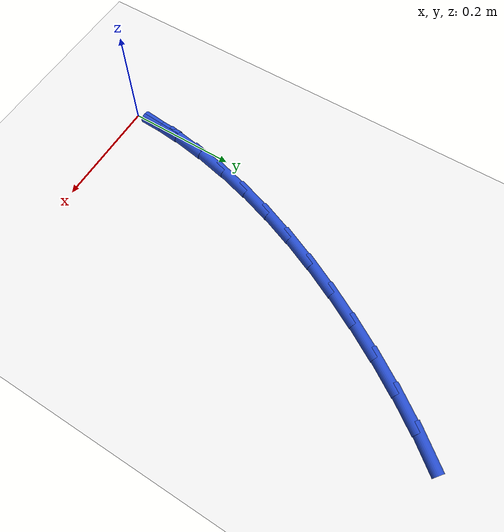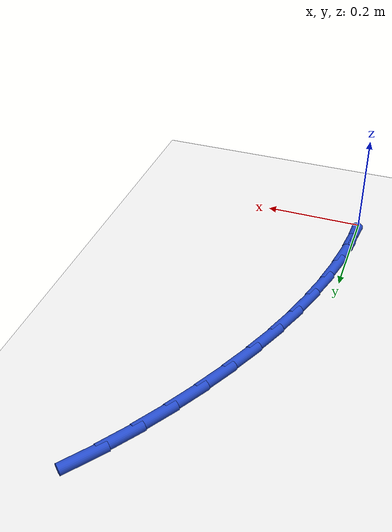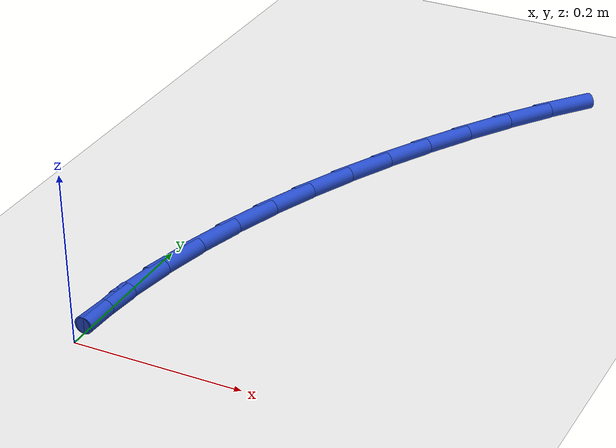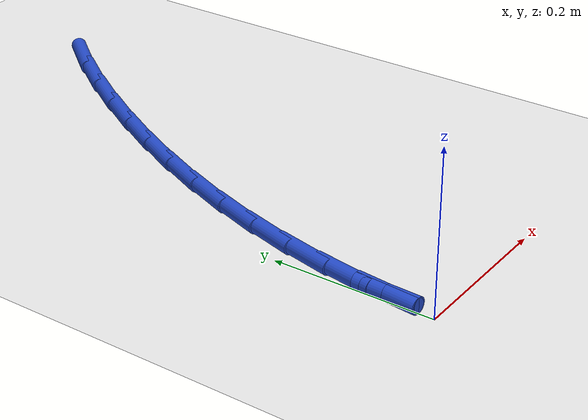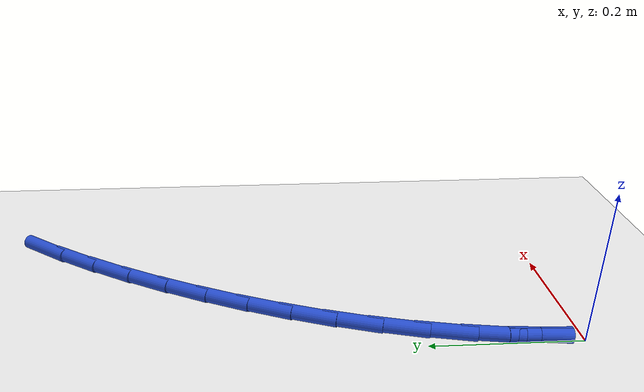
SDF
<sdf version="1.6">
 <world name="default">
  <model name="ground_plane">
   <static>1</static>
   <link name="link">
    <collision name="collision">
     <geometry><plane><normal>0 0 1</normal><size>100 100</size></plane></geometry>
     <surface><friction><ode><mu>100</mu><mu2>50</mu2></ode></friction></surface>
    </collision>
    <visual name="visual">
     <cast_shadows>0</cast_shadows>
     <geometry><plane><normal>0 0 1</normal><size>100 100</size></plane></geometry>
     <material>
      <script><uri>file://media/materials/scripts/gazebo.material</uri><name>Gazebo/WhiteGlow</name></script>
     </material>
    </visual>
   </link>
  </model>
  <model name="line">
   <link name="link_1">
    <pose>0.0025051976219625564 0.05870461194268625 0.01 0 1.57 1.4646718601975082</pose>
    <collision name="collision">
     <geometry><cylinder><radius>0.01</radius><length>0.08</length></cylinder></geometry>
    </collision>
    <visual name="visual">
     <material>
      <script><name>Gazebo/Blue</name><uri>file://media/materials/scripts/gazebo.material</uri></script>
     </material>
     <geometry><cylinder><radius>0.01</radius><length>0.08</length></cylinder></geometry>
    </visual>
   </link>
   <link name="link_2">
    <pose>0.008700781889086243 0.11686563671250014 0.01 0 1.57 1.4036430765515937</pose>
    <collision name="collision">
     <geometry><cylinder><radius>0.01</radius><length>0.08</length></cylinder></geometry>
    </collision>
    <visual name="visual">
     <material>
      <script><name>Gazebo/Blue</name><uri>file://media/materials/scripts/gazebo.material</uri></script>
     </material>
     <geometry><cylinder><radius>0.01</radius><length>0.08</length></cylinder></geometry>
    </visual>
   </link>
   <link name="link_3">
    <pose>0.018423220259055476 0.17448773054041927 0.01 0 1.57 1.3454673776437265</pose>
    <collision name="collision">
     <geometry><cylinder><radius>0.01</radius><length>0.08</length></cylinder></geometry>
    </collision>
    <visual name="visual">
     <material>
      <script><name>Gazebo/Blue</name><uri>file://media/materials/scripts/gazebo.material</uri></script>
     </material>
     <geometry><cylinder><radius>0.01</radius><length>0.08</length></cylinder></geometry>
    </visual>
   </link>
   <link name="link_4">
    <pose>0.03150898018955464 0.23157554965742133 0.01 0 1.57 1.2904371942936577</pose>
    <collision name="collision">
     <geometry><cylinder><radius>0.01</radius><length>0.08</length></cylinder></geometry>
    </collision>
    <visual name="visual">
     <material>
      <script><name>Gazebo/Blue</name><uri>file://media/materials/scripts/gazebo.material</uri></script>
     </material>
     <geometry><cylinder><radius>0.01</radius><length>0.08</length></cylinder></geometry>
    </visual>
   </link>
   <link name="link_5">
    <pose>0.04779452913826813 0.2881337502944838 0.01 0 1.57 1.2387368738639992</pose>
    <collision name="collision">
     <geometry><cylinder><radius>0.01</radius><length>0.08</length></cylinder></geometry>
    </collision>
    <visual name="visual">
     <material>
      <script><name>Gazebo/Blue</name><uri>file://media/materials/scripts/gazebo.material</uri></script>
     </material>
     <geometry><cylinder><radius>0.01</radius><length>0.08</length></cylinder></geometry>
    </visual>
   </link>
   <link name="link_6">
    <pose>0.06711633456288028 0.3441669886825844 0.01 0 1.57 1.190455246572651</pose>
    <collision name="collision">
     <geometry><cylinder><radius>0.01</radius><length>0.08</length></cylinder></geometry>
    </collision>
    <visual name="visual">
     <material>
      <script><name>Gazebo/Blue</name><uri>file://media/materials/scripts/gazebo.material</uri></script>
     </material>
     <geometry><cylinder><radius>0.01</radius><length>0.08</length></cylinder></geometry>
    </visual>
   </link>
   <link name="link_7">
    <pose>0.0893108639210755 0.3996799210527008 0.01 0 1.57 1.1456020072569004</pose>
    <collision name="collision">
     <geometry><cylinder><radius>0.01</radius><length>0.08</length></cylinder></geometry>
    </collision>
    <visual name="visual">
     <material>
      <script><name>Gazebo/Blue</name><uri>file://media/materials/scripts/gazebo.material</uri></script>
     </material>
     <geometry><cylinder><radius>0.01</radius><length>0.08</length></cylinder></geometry>
    </visual>
   </link>
   <link name="link_8">
    <pose>0.11421458467053819 0.45467720363581066 0.01 0 1.57 1.1041252388762564</pose>
    <collision name="collision">
     <geometry><cylinder><radius>0.01</radius><length>0.08</length></cylinder></geometry>
    </collision>
    <visual name="visual">
     <material>
      <script><name>Gazebo/Blue</name><uri>file://media/materials/scripts/gazebo.material</uri></script>
     </material>
     <geometry><cylinder><radius>0.01</radius><length>0.08</length></cylinder></geometry>
    </visual>
   </link>
   <link name="link_9">
    <pose>0.14166396426895272 0.5091634926628917 0.01 0 1.57 1.0658570257083424</pose>
    <collision name="collision">
     <geometry><cylinder><radius>0.01</radius><length>0.08</length></cylinder></geometry>
    </collision>
    <visual name="visual">
     <material>
      <script><name>Gazebo/Blue</name><uri>file://media/materials/scripts/gazebo.material</uri></script>
     </material>
     <geometry><cylinder><radius>0.01</radius><length>0.08</length></cylinder></geometry>
    </visual>
   </link>
   <link name="link_10">
    <pose>0.17149703378486145 0.5631372062775031 0.01 0 1.57 1.0281013918233208</pose>
    <collision name="collision">
     <geometry><cylinder><radius>0.01</radius><length>0.08</length></cylinder></geometry>
    </collision>
    <visual name="visual">
     <material>
      <script><name>Gazebo/Blue</name><uri>file://media/materials/scripts/gazebo.material</uri></script>
     </material>
     <geometry><cylinder><radius>0.01</radius><length>0.08</length></cylinder></geometry>
    </visual>
   </link>
   <link name="link_11">
    <pose>0.2036066101025394 0.6163781924424847 0.01 0 1.57 0.9872175920442956</pose>
    <collision name="collision">
     <geometry><cylinder><radius>0.01</radius><length>0.08</length></cylinder></geometry>
    </collision>
    <visual name="visual">
     <material>
      <script><name>Gazebo/Blue</name><uri>file://media/materials/scripts/gazebo.material</uri></script>
     </material>
     <geometry><cylinder><radius>0.01</radius><length>0.08</length></cylinder></geometry>
    </visual>
   </link>
   <link name="link_12">
    <pose>0.23795339034223068 0.6683954882320403 0.01 0 1.57 0.9422939699953133</pose>
    <collision name="collision">
     <geometry><cylinder><radius>0.01</radius><length>0.08</length></cylinder></geometry>
    </collision>
    <visual name="visual">
     <material>
      <script><name>Gazebo/Blue</name><uri>file://media/materials/scripts/gazebo.material</uri></script>
     </material>
     <geometry><cylinder><radius>0.01</radius><length>0.08</length></cylinder></geometry>
    </visual>
   </link>
   <link name="link_13">
    <pose>0.27450229188380415 0.7186812938275302 0.01 0 1.57 0.8925280600464209</pose>
    <collision name="collision">
     <geometry><cylinder><radius>0.01</radius><length>0.08</length></cylinder></geometry>
    </collision>
    <visual name="visual">
     <material>
      <script><name>Gazebo/Blue</name><uri>file://media/materials/scripts/gazebo.material</uri></script>
     </material>
     <geometry><cylinder><radius>0.01</radius><length>0.08</length></cylinder></geometry>
    </visual>
   </link>
   <link name="link_111">
    <pose>0.002546518991189347 0.05864739594182351 0.01 0 1.57 1.5274027475533902</pose>
    <collision name="collision">
     <geometry><cylinder><radius>0.01</radius><length>0.08</length></cylinder></geometry>
    </collision>
    <visual name="visual">
     <material>
      <script><name>Gazebo/Blue</name><uri>file://media/materials/scripts/gazebo.material</uri></script>
     </material>
     <geometry><cylinder><radius>0.01</radius><length>0.08</length></cylinder></geometry>
    </visual>
   </link>
  </model>
 </world>
</sdf>
